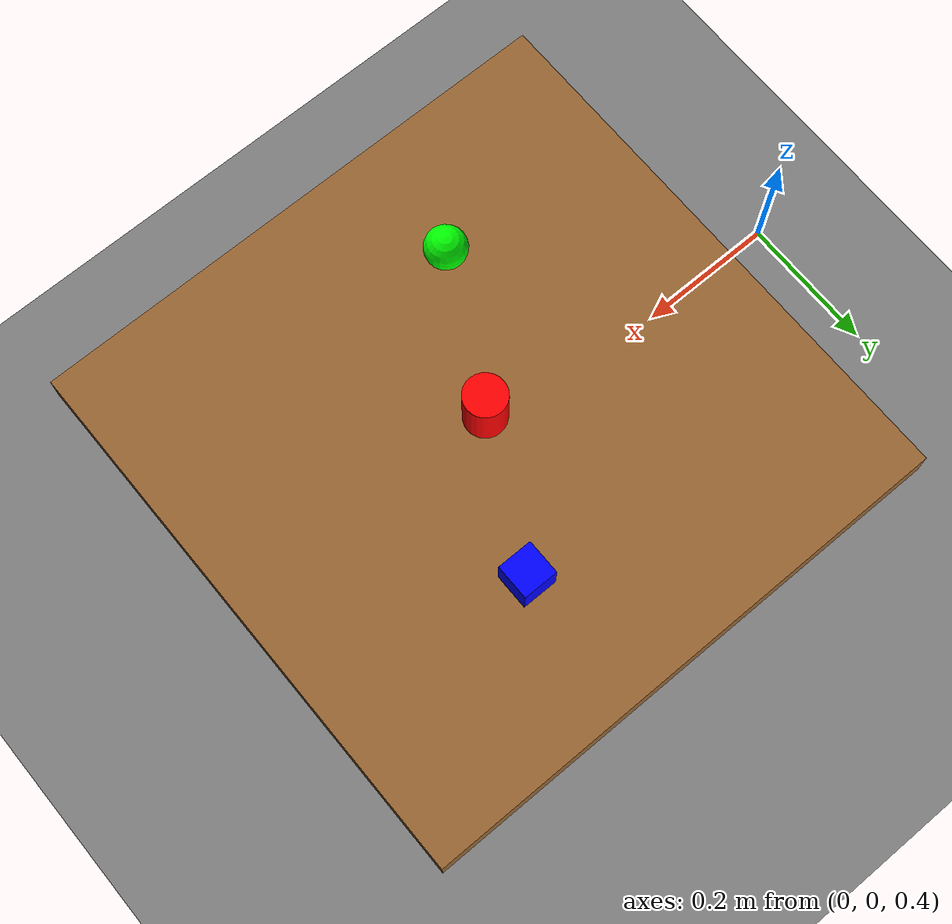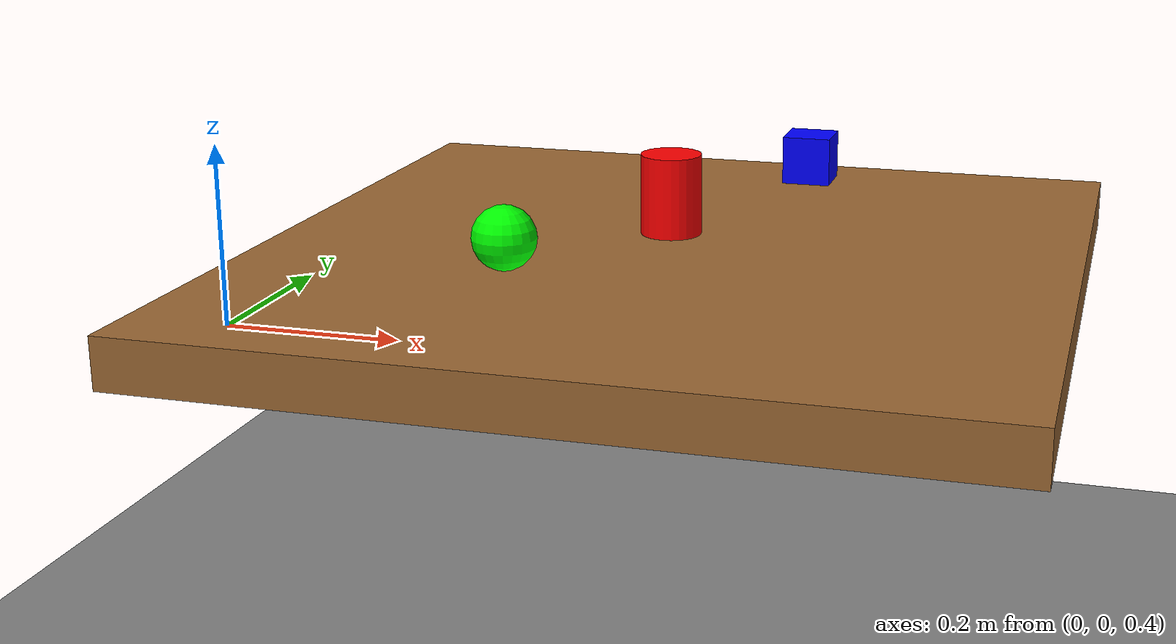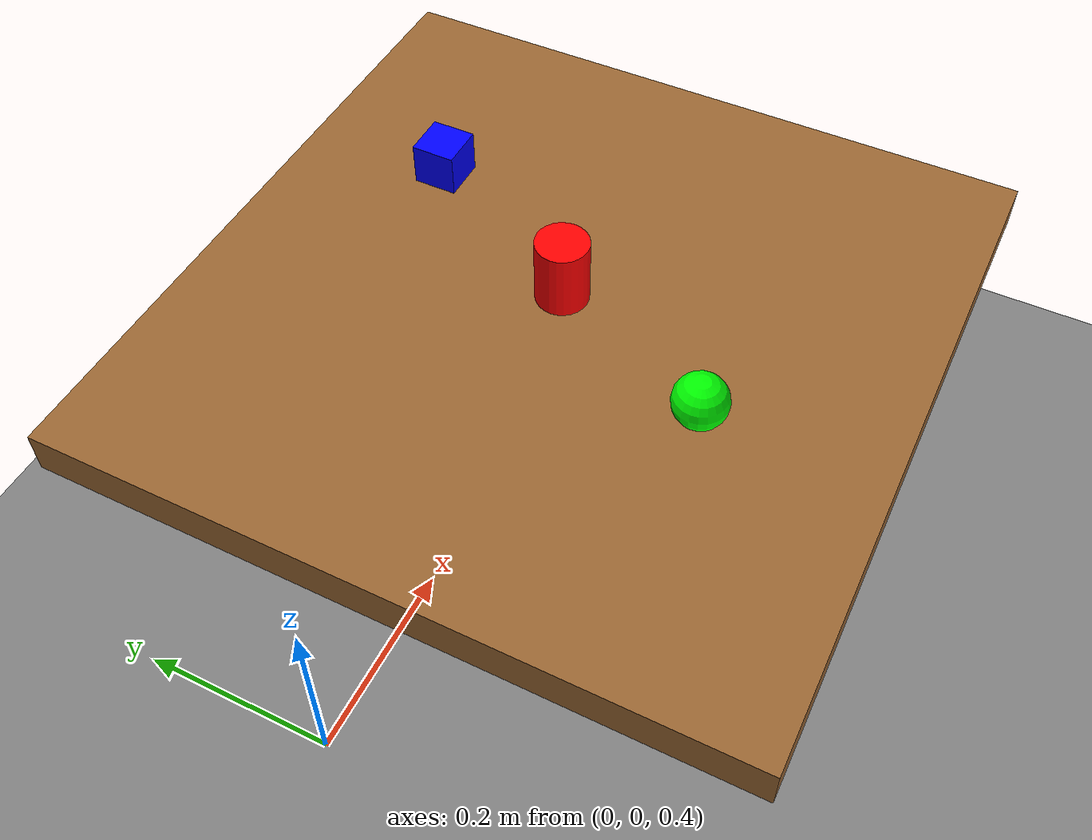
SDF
<?xml version="1.0"?>
<sdf version="1.9">
  <world name="robotic_arm_world">

    <physics name="physics_config" type="dart">
      <max_step_size>0.001</max_step_size>
      <real_time_factor>1.0</real_time_factor>
      <real_time_update_rate>1000</real_time_update_rate>
    </physics>

    <scene>
      <ambient>0.8 0.8 0.8 1</ambient>
      <background>0.5 0.5 0.5 1</background>
      <shadows>true</shadows>
    </scene>

    <gui>
      <camera name="camera_user">
        <pose>-2.0 -2.0 1.5 0 0.3 1.2</pose>
        <view_controller>orbit</view_controller>
      </camera>
    </gui>

    <light type="directional" name="sun">
      <pose>0 0 10 0 0 0</pose>
      <diffuse>0.8 0.8 0.8 1</diffuse>
      <specular>0.2 0.2 0.2 1</specular>
      <attenuation>1 0 0 0</attenuation>
      <direction>-0.5 0.5 -1.0</direction>
      <cast_shadows>true</cast_shadows>
    </light>

    <model name="ground_plane">
      <static>true</static>
      <link name="ground_link">
        <collision name="ground_collision">
          <geometry>
            <plane>
              <normal>0 0 1</normal>
              <size>10 10</size>
            </plane>
          </geometry>
          <surface>
            <friction>
              <ode>
                <mu>100</mu>
                <mu2>100</mu2>
              </ode>
            </friction>
          </surface>
        </collision>
        <visual name="ground_visual">
          <geometry>
            <plane>
              <normal>0 0 1</normal>
              <size>10 10</size>
            </plane>
          </geometry>
          <material>
            <ambient>0.5 0.5 0.5 1</ambient>
            <diffuse>0.5 0.5 0.5 1</diffuse>
          </material>
        </visual>
      </link>
    </model>

    <model name="table">
      <pose>0.5 0 0 0 0 0</pose>
      <static>true</static>
      <link name="table_link">
        <pose>0 0 0.5 0 0 0</pose>
        <collision name="table_top_collision">
          <geometry>
            <box>
              <size>0.8 0.8 0.05</size>
            </box>
          </geometry>
        </collision>
        <visual name="table_top_visual">
          <geometry>
            <box>
              <size>0.8 0.8 0.05</size>
            </box>
          </geometry>
          <material>
            <ambient>0.6 0.4 0.2 1</ambient>
            <diffuse>0.6 0.4 0.2 1</diffuse>
          </material>
        </visual>

        <collision name="table_leg_1">
          <pose>-0.35 -0.35 -0.3 0 0 0</pose>
          <geometry>
            <box>
              <size>0.05 0.05 0.6</size>
            </box>
          </geometry>
        </collision>
        <collision name="table_leg_2">
          <pose>0.35 -0.35 -0.3 0 0 0</pose>
          <geometry>
            <box>
              <size>0.05 0.05 0.6</size>
            </box>
          </geometry>
        </collision>
        <collision name="table_leg_3">
          <pose>-0.35 0.35 -0.3 0 0 0</pose>
          <geometry>
            <box>
              <size>0.05 0.05 0.6</size>
            </box>
          </geometry>
        </collision>
        <collision name="table_leg_4">
          <pose>0.35 0.35 -0.3 0 0 0</pose>
          <geometry>
            <box>
              <size>0.05 0.05 0.6</size>
            </box>
          </geometry>
        </collision>
      </link>
    </model>

    <model name="object_red">
      <pose>0.5 0 0.58 0 0 0</pose>
      <link name="object_red_link">
        <collision name="collision">
          <geometry>
            <cylinder>
              <radius>0.03</radius>
              <length>0.08</length>
            </cylinder>
          </geometry>
          <surface>
            <friction>
              <ode>
                <mu>1.0</mu>
                <mu2>1.0</mu2>
              </ode>
            </friction>
          </surface>
        </collision>
        <visual name="visual">
          <geometry>
            <cylinder>
              <radius>0.03</radius>
              <length>0.08</length>
            </cylinder>
          </geometry>
          <material>
            <ambient>1 0 0 1</ambient>
            <diffuse>1 0 0 1</diffuse>
          </material>
        </visual>
        <inertial>
          <mass>0.1</mass>
          <inertia>
            <ixx>0.0001</ixx><ixy>0</ixy><ixz>0</ixz>
            <iyy>0.0001</iyy><iyz>0</iyz><izz>0.0001</izz>
          </inertia>
        </inertial>
      </link>
    </model>

    <model name="object_blue">
      <pose>0.6 0.2 0.58 0 0 0</pose>
      <link name="object_blue_link">
        <collision name="collision">
          <geometry>
            <box>
              <size>0.05 0.05 0.05</size>
            </box>
          </geometry>
          <surface>
            <friction>
              <ode>
                <mu>1.0</mu>
                <mu2>1.0</mu2>
              </ode>
            </friction>
          </surface>
        </collision>
        <visual name="visual">
          <geometry>
            <box>
              <size>0.05 0.05 0.05</size>
            </box>
          </geometry>
          <material>
            <ambient>0 0 1 1</ambient>
            <diffuse>0 0 1 1</diffuse>
          </material>
        </visual>
        <inertial>
          <mass>0.1</mass>
          <inertia>
            <ixx>0.0001</ixx><ixy>0</ixy><ixz>0</ixz>
            <iyy>0.0001</iyy><iyz>0</iyz><izz>0.0001</izz>
          </inertia>
        </inertial>
      </link>
    </model>

    <model name="object_green">
      <pose>0.4 -0.2 0.58 0 0 0</pose>
      <link name="object_green_link">
        <collision name="collision">
          <geometry>
            <sphere>
              <radius>0.03</radius>
            </sphere>
          </geometry>
          <surface>
            <friction>
              <ode>
                <mu>1.0</mu>
                <mu2>1.0</mu2>
              </ode>
            </friction>
          </surface>
        </collision>
        <visual name="visual">
          <geometry>
            <sphere>
              <radius>0.03</radius>
            </sphere>
          </geometry>
          <material>
            <ambient>0 1 0 1</ambient>
            <diffuse>0 1 0 1</diffuse>
          </material>
        </visual>
        <inertial>
          <mass>0.1</mass>
          <inertia>
            <ixx>0.0001</ixx><ixy>0</ixy><ixz>0</ixz>
            <iyy>0.0001</iyy><iyz>0</iyz><izz>0.0001</izz>
          </inertia>
        </inertial>
      </link>
    </model>

  </world>
</sdf>
